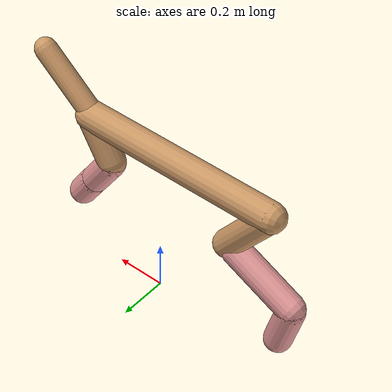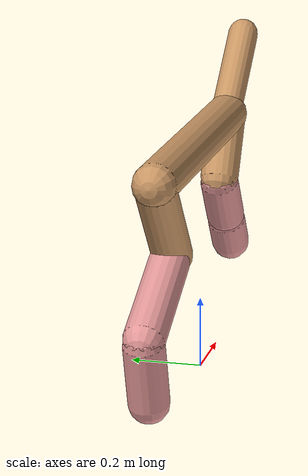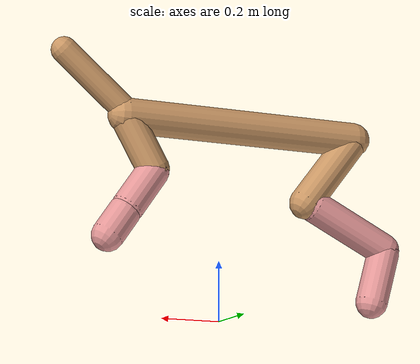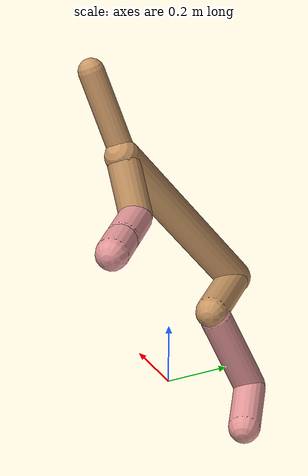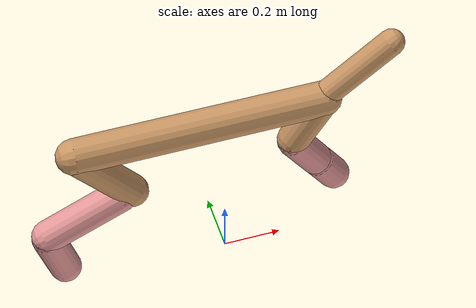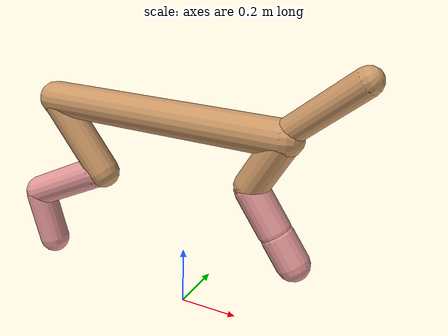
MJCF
<mujoco model="cheetah">
  <compiler angle="radian" coordinate="local" inertiafromgeom="true" settotalmass="14" />
  <default>
    <joint armature=".1" damping=".01" limited="true" solimplimit="0 .8 .03" solreflimit=".02 1" stiffness="8" />
    <geom conaffinity="0" condim="3" contype="1" friction="0.8 .1 .1" rgba="0.8 0.6 .4 1" solimp="0.0 0.8 0.01" solref="0.02 1" />
    <motor ctrllimited="true" ctrlrange="-1 1" />
  </default>
  <size nstack="300000" nuser_geom="1" />
  <option gravity="0 0 -9.81" timestep="0.01" />
  <worldbody>
    <body name="torso" pos="0.0 0.0 0.6592145507124777">
      <joint armature="0" axis="1 0 0" damping="0" limited="false" name="ignorex" pos="0 0 0" stiffness="0" type="slide" />
      <joint armature="0" axis="0 0 1" damping="0" limited="false" name="ignorez" pos="0 0 0" stiffness="0" type="slide" />
      <joint armature="0" axis="0 1 0" damping="0" limited="false" name="ignorey" pos="0 0 0" stiffness="0" type="hinge" />
      <geom fromto="-0.5 0.0 0.0 0.3320006133279271 0.0 0.0" name="torso" size="0.05820752124236327" type="capsule" />
      <geom axisangle="0 1 0 .87" name="head" pos="0.43200061332792705 0.0 0.1" size="0.043518196698038025 0.15" type="capsule" />

      <body name="bthigh" pos="-.5 0 0">
        <joint axis="0 1 0" damping="6" name="bthigh" pos="0 0 0" range="-.52 1.05" stiffness="240" type="hinge" />
        <geom axisangle="0 1 0 -3.8" name="bthigh" pos="0.09694426910091501 0.0 -0.1260275498311895" size="0.05463726609858994 0.13998822868924513" type="capsule" />
        <body name="bshin" pos="0.15388853820183002 0.0 -0.242055099662379">
          <joint axis="0 1 0" damping="4.5" name="bshin" pos="0 0 0" range="-.785 .785" stiffness="180" type="hinge" />
          <geom axisangle="0 1 0 -2.03" name="bshin" pos="-0.13536276082543544 0.0 -0.06768138041271772" rgba="0.9 0.6 0.6 1" size="0.05463726609858994 0.1448154089888743" type="capsule" />
          <body name="bfoot" pos="-0.2707255216508709 0.0 -0.13536276082543544">
            <joint axis="0 1 0" damping="3" name="bfoot" pos="0 0 0" range="-.4 .785" stiffness="120" type="hinge" />
            <geom axisangle="0 1 0 -.27" name="bfoot" pos="0.029040015807099823 0.0 -0.09389605110962278" rgba="0.9 0.6 0.6 1" size="0.05463726609858994 0.09075098963302788" type="capsule" />
            <inertial mass="10" />
          </body>
        </body>
      </body>
      <body name="fthigh" pos="0.3320006133279271 0.0 0.0">
        <joint axis="0 1 0" damping="4.5" name="fthigh" pos="0 0 0" range="-1.5 0.8" stiffness="180" type="hinge" />
        <geom axisangle="0 1 0 .52" name="fthigh" pos="-0.05098467566163608 0.0 -0.08740230113423327" size="0.05448074728989082 0.09526152452686536" type="capsule" />
        <body name="fshin" pos="-0.10196935132327216 0.0 -0.17480460226846653">
          <joint axis="0 1 0" damping="3" name="fshin" pos="0 0 0" range="-1.2 1.1" stiffness="120" type="hinge" />
          <geom axisangle="0 1 0 -.6" name="fshin" pos="0.04739003596964829 0.0 -0.06561697288105148" rgba="0.9 0.6 0.6 1" size="0.05448074728989082 0.07592271879584757" type="capsule" />
          <body name="ffoot" pos="0.09478007193929658 0.0 -0.13123394576210295">
            <joint axis="0 1 0" damping="1.5" name="ffoot" pos="0 0 0" range="-3.1 -0.3" stiffness="60" type="hinge" />
            <geom axisangle="0 1 0 -.6" name="ffoot" pos="0.034259280475423246 0.0 -0.05329221407288061" rgba="0.9 0.6 0.6 1" size="0.05448074728989082 0.050137644487823874" type="capsule" />
            <inertial mass="10" />
          </body>
        </body>
      </body>
    </body>
  </worldbody>
  <actuator>
    <motor gear="120" joint="bthigh" name="bthigh" />
    <motor gear="90" joint="bshin" name="bshin" />
    <motor gear="60" joint="bfoot" name="bfoot" />
    <motor gear="120" joint="fthigh" name="fthigh" />
    <motor gear="60" joint="fshin" name="fshin" />
    <motor gear="30" joint="ffoot" name="ffoot" />
  </actuator>
</mujoco>
